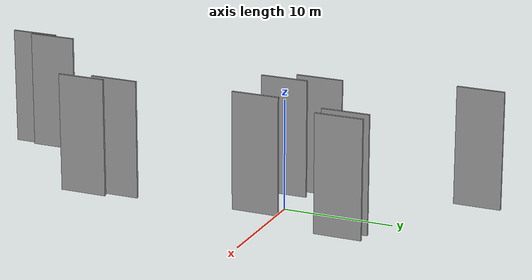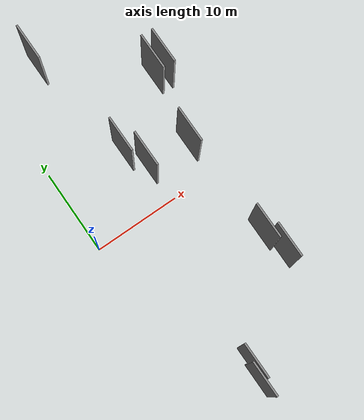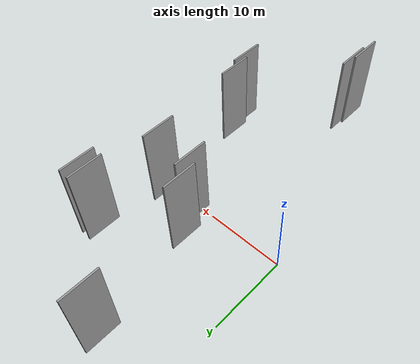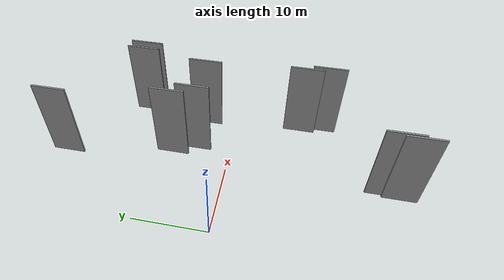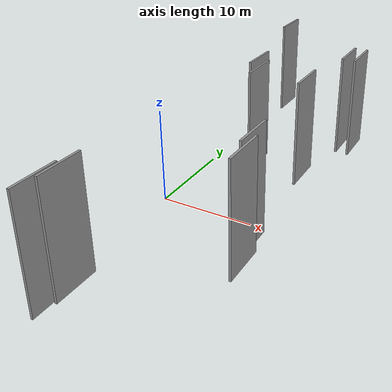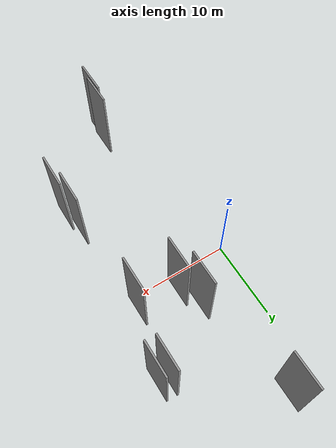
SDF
<sdf version="1.6">
 <world name="default">
  <scene>
   <sky><clouds><speed>12</speed></clouds></sky>
   <ambient>0.4 0.4 0.4 1</ambient>
   <background>0.7 0.7 0.7 1</background>
   <shadows>1</shadows>
  </scene>
  <gravity>0 0 -9.8066</gravity>
  <magnetic_field>6e-06 2.3e-05 -4.2e-05</magnetic_field>
  <physics default="0" name="default_physics" type="ode">
   <ode>
    <solver>
     <type>quick</type>
     <iters>10</iters>
     <sor>1.0</sor>
     <use_dynamic_moi_rescaling>0</use_dynamic_moi_rescaling>
    </solver>
    <constraints>
     <cfm>0</cfm>
     <erp>0.2</erp>
     <contact_max_correcting_vel>100</contact_max_correcting_vel>
     <contact_surface_layer>0.001</contact_surface_layer>
    </constraints>
   </ode>
   <max_step_size>0.004</max_step_size>
   <real_time_factor>1</real_time_factor>
   <real_time_update_rate>250</real_time_update_rate>
  </physics>
  <light name="sun" type="directional">
   <pose>0 0 10 0 0 0</pose>
   <diffuse>0.8 0.8 0.8 1</diffuse>
   <specular>0.2 0.2 0.2 1</specular>
   <attenuation>
    <range>1000</range>
    <constant>0.9</constant>
    <linear>0.01</linear>
    <quadratic>0.001</quadratic>
   </attenuation>
   <direction>-0.5 0.1 -0.9</direction>
  </light>
  <model name="grey_wall_1">
   <static>1</static>
   <pose>13.7986 3.2421 5.0 0.000000 0.000000 1.570796</pose>
   <link name="link">
    <pose>0 0 5.00 0 0 0</pose>
    <collision name="collision"><geometry><box><size>4.00 0.2 10.00</size></box></geometry></collision>
    <visual name="visual">
     <cast_shadows>0</cast_shadows>
     <geometry><box><size>4.00 0.2 10.00</size></box></geometry>
     <material>
      <script>
       <uri>model://grey_wall/materials/scripts</uri>
       <uri>model://grey_wall/materials/textures</uri>
       <name>vrc/grey_wall</name>
      </script>
     </material>
    </visual>
   </link>
  </model>
  <model name="grey_wall_2">
   <static>1</static>
   <pose>7.6416 6.2573 5.0 0.000000 0.000000 1.570796</pose>
   <link name="link">
    <pose>0 0 5.00 0 0 0</pose>
    <collision name="collision"><geometry><box><size>4.00 0.2 10.00</size></box></geometry></collision>
    <visual name="visual">
     <cast_shadows>0</cast_shadows>
     <geometry><box><size>4.00 0.2 10.00</size></box></geometry>
     <material>
      <script>
       <uri>model://grey_wall/materials/scripts</uri>
       <uri>model://grey_wall/materials/textures</uri>
       <name>vrc/grey_wall</name>
      </script>
     </material>
    </visual>
   </link>
  </model>
  <model name="grey_wall_3">
   <static>1</static>
   <pose>14.9631 11.3900 5.0 0.000000 0.000000 1.570796</pose>
   <link name="link">
    <pose>0 0 5.00 0 0 0</pose>
    <collision name="collision"><geometry><box><size>4.00 0.2 10.00</size></box></geometry></collision>
    <visual name="visual">
     <cast_shadows>0</cast_shadows>
     <geometry><box><size>4.00 0.2 10.00</size></box></geometry>
     <material>
      <script>
       <uri>model://grey_wall/materials/scripts</uri>
       <uri>model://grey_wall/materials/textures</uri>
       <name>vrc/grey_wall</name>
      </script>
     </material>
    </visual>
   </link>
  </model>
  <model name="grey_wall_4">
   <static>1</static>
   <pose>8.8814 3.6730 5.0 0.000000 0.000000 1.570796</pose>
   <link name="link">
    <pose>0 0 5.00 0 0 0</pose>
    <collision name="collision"><geometry><box><size>4.00 0.2 10.00</size></box></geometry></collision>
    <visual name="visual">
     <cast_shadows>0</cast_shadows>
     <geometry><box><size>4.00 0.2 10.00</size></box></geometry>
     <material>
      <script>
       <uri>model://grey_wall/materials/scripts</uri>
       <uri>model://grey_wall/materials/textures</uri>
       <name>vrc/grey_wall</name>
      </script>
     </material>
    </visual>
   </link>
  </model>
  <model name="grey_wall_5">
   <static>1</static>
   <pose>5.5522 -21.0981 5.0 0.000000 0.000000 1.570796</pose>
   <link name="link">
    <pose>0 0 5.00 0 0 0</pose>
    <collision name="collision"><geometry><box><size>4.00 0.2 10.00</size></box></geometry></collision>
    <visual name="visual">
     <cast_shadows>0</cast_shadows>
     <geometry><box><size>4.00 0.2 10.00</size></box></geometry>
     <material>
      <script>
       <uri>model://grey_wall/materials/scripts</uri>
       <uri>model://grey_wall/materials/textures</uri>
       <name>vrc/grey_wall</name>
      </script>
     </material>
    </visual>
   </link>
  </model>
  <model name="grey_wall_6">
   <static>1</static>
   <pose>5.8758 -19.2251 5.0 0.000000 0.000000 1.570796</pose>
   <link name="link">
    <pose>0 0 5.00 0 0 0</pose>
    <collision name="collision"><geometry><box><size>4.00 0.2 10.00</size></box></geometry></collision>
    <visual name="visual">
     <cast_shadows>0</cast_shadows>
     <geometry><box><size>4.00 0.2 10.00</size></box></geometry>
     <material>
      <script>
       <uri>model://grey_wall/materials/scripts</uri>
       <uri>model://grey_wall/materials/textures</uri>
       <name>vrc/grey_wall</name>
      </script>
     </material>
    </visual>
   </link>
  </model>
  <model name="grey_wall_7">
   <static>1</static>
   <pose>16.1969 11.3256 5.0 0.000000 0.000000 1.570796</pose>
   <link name="link">
    <pose>0 0 5.00 0 0 0</pose>
    <collision name="collision"><geometry><box><size>4.00 0.2 10.00</size></box></geometry></collision>
    <visual name="visual">
     <cast_shadows>0</cast_shadows>
     <geometry><box><size>4.00 0.2 10.00</size></box></geometry>
     <material>
      <script>
       <uri>model://grey_wall/materials/scripts</uri>
       <uri>model://grey_wall/materials/textures</uri>
       <name>vrc/grey_wall</name>
      </script>
     </material>
    </visual>
   </link>
  </model>
  <model name="grey_wall_8">
   <static>1</static>
   <pose>14.6069 -8.8990 5.0 0.000000 0.000000 1.570796</pose>
   <link name="link">
    <pose>0 0 5.00 0 0 0</pose>
    <collision name="collision"><geometry><box><size>4.00 0.2 10.00</size></box></geometry></collision>
    <visual name="visual">
     <cast_shadows>0</cast_shadows>
     <geometry><box><size>4.00 0.2 10.00</size></box></geometry>
     <material>
      <script>
       <uri>model://grey_wall/materials/scripts</uri>
       <uri>model://grey_wall/materials/textures</uri>
       <name>vrc/grey_wall</name>
      </script>
     </material>
    </visual>
   </link>
  </model>
  <model name="grey_wall_9">
   <static>1</static>
   <pose>5.3578 19.2094 5.0 0.000000 0.000000 1.570796</pose>
   <link name="link">
    <pose>0 0 5.00 0 0 0</pose>
    <collision name="collision"><geometry><box><size>4.00 0.2 10.00</size></box></geometry></collision>
    <visual name="visual">
     <cast_shadows>0</cast_shadows>
     <geometry><box><size>4.00 0.2 10.00</size></box></geometry>
     <material>
      <script>
       <uri>model://grey_wall/materials/scripts</uri>
       <uri>model://grey_wall/materials/textures</uri>
       <name>vrc/grey_wall</name>
      </script>
     </material>
    </visual>
   </link>
  </model>
  <model name="grey_wall_10">
   <static>1</static>
   <pose>15.2191 -11.5580 5.0 0.000000 0.000000 1.570796</pose>
   <link name="link">
    <pose>0 0 5.00 0 0 0</pose>
    <collision name="collision"><geometry><box><size>4.00 0.2 10.00</size></box></geometry></collision>
    <visual name="visual">
     <cast_shadows>0</cast_shadows>
     <geometry><box><size>4.00 0.2 10.00</size></box></geometry>
     <material>
      <script>
       <uri>model://grey_wall/materials/scripts</uri>
       <uri>model://grey_wall/materials/textures</uri>
       <name>vrc/grey_wall</name>
      </script>
     </material>
    </visual>
   </link>
  </model>
 </world>
</sdf>
